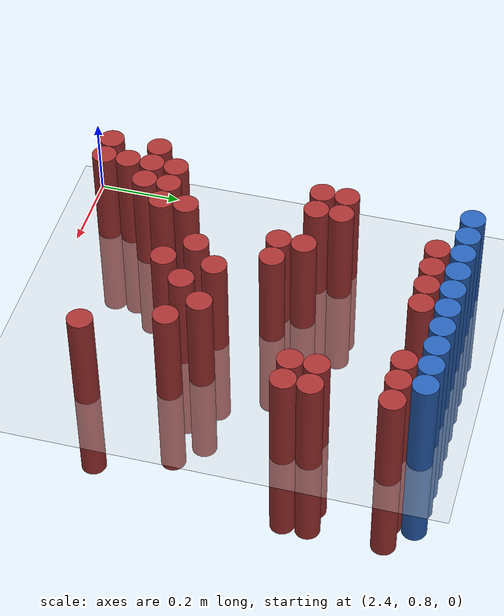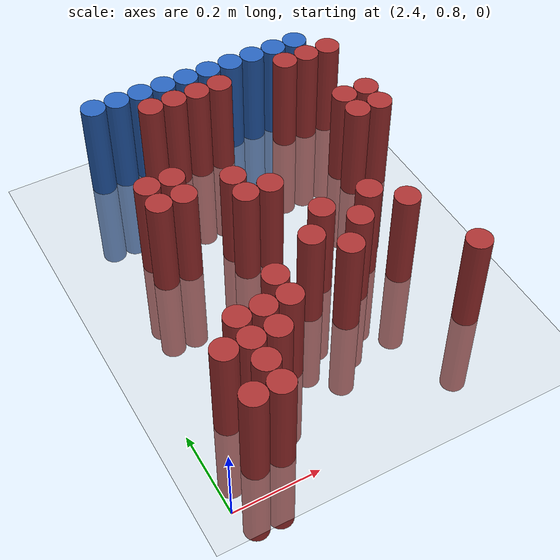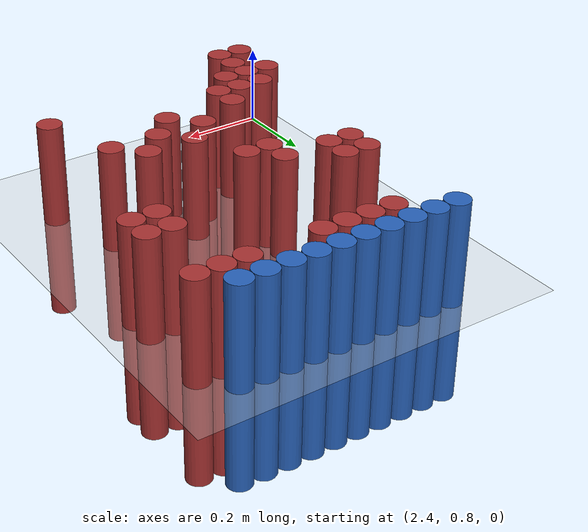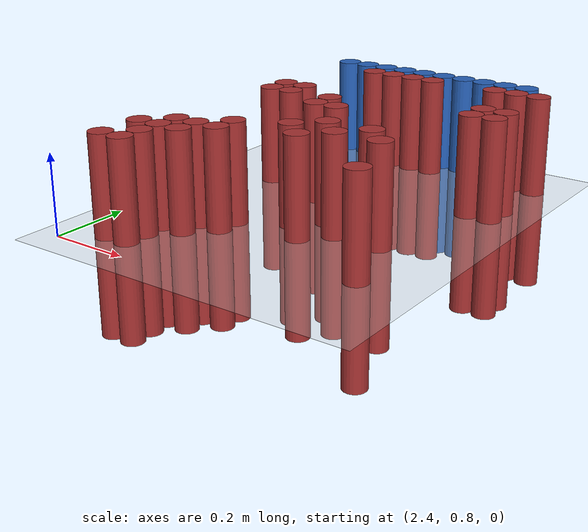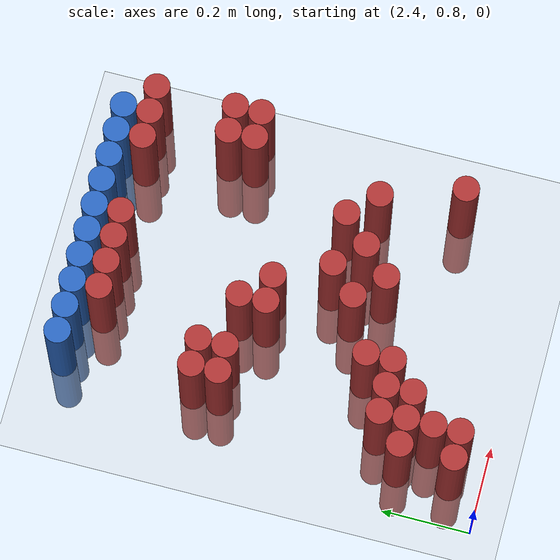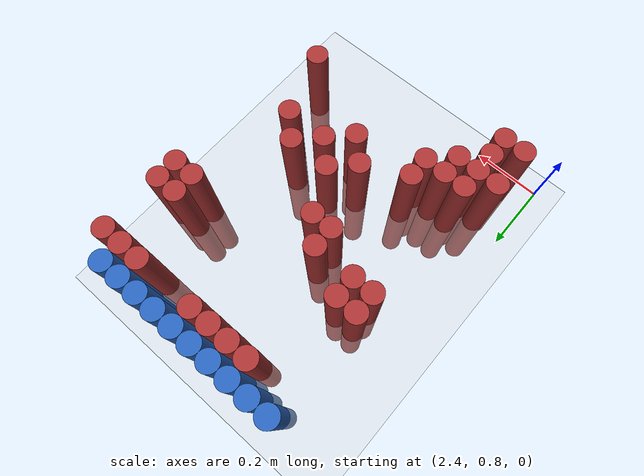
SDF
<sdf version="1.6">
 <world name="default">
  <model name="ground_plane">
   <static>1</static>
   <link name="link">
    <collision name="collision">
     <geometry><plane><normal>0 0 1</normal><size>100 100</size></plane></geometry>
     <surface><friction><ode><mu>100</mu><mu2>50</mu2></ode></friction></surface>
    </collision>
    <visual name="visual">
     <cast_shadows>0</cast_shadows>
     <geometry><plane><normal>0 0 1</normal><size>100 100</size></plane></geometry>
     <material>
      <script><uri>file://media/materials/scripts/gazebo.material</uri><name>Gazebo/Grey</name></script>
     </material>
    </visual>
   </link>
  </model>
  <model name="unit_cylinder_103">
   <static>1</static>
   <pose>2.550000 1.770000 0.000000 0.000000 0.000000 0.000000</pose>
   <link name="link">
    <inertial>
     <mass>1</mass>
     <inertia><ixx>0.145833</ixx><ixy>0</ixy><ixz>0</ixz><iyy>0.145833</iyy><iyz>0</iyz><izz>0.125</izz></inertia>
    </inertial>
    <collision name="collision">
     <geometry><cylinder><radius>0.030000</radius><length>0.5</length></cylinder></geometry>
    </collision>
    <visual name="visual">
     <geometry><cylinder><radius>0.030000</radius><length>0.5</length></cylinder></geometry>
     <material>
      <ambient>0.152000 0.379000 0.720000 1</ambient>
      <diffuse>0.152000 0.379000 0.720000 1</diffuse>
     </material>
     <material>
      <script><name>Gazebo/Grey</name><uri>file://media/materials/scripts/gazebo.material</uri></script>
     </material>
    </visual>
   </link>
  </model>
  <model name="unit_cylinder_104">
   <static>1</static>
   <pose>2.610000 1.770000 0.000000 0.000000 0.000000 0.000000</pose>
   <link name="link">
    <inertial>
     <mass>1</mass>
     <inertia><ixx>0.145833</ixx><ixy>0</ixy><ixz>0</ixz><iyy>0.145833</iyy><iyz>0</iyz><izz>0.125</izz></inertia>
    </inertial>
    <collision name="collision">
     <geometry><cylinder><radius>0.030000</radius><length>0.5</length></cylinder></geometry>
    </collision>
    <visual name="visual">
     <geometry><cylinder><radius>0.030000</radius><length>0.5</length></cylinder></geometry>
     <material>
      <ambient>0.152000 0.379000 0.720000 1</ambient>
      <diffuse>0.152000 0.379000 0.720000 1</diffuse>
     </material>
     <material>
      <script><name>Gazebo/Grey</name><uri>file://media/materials/scripts/gazebo.material</uri></script>
     </material>
    </visual>
   </link>
  </model>
  <model name="unit_cylinder_105">
   <static>1</static>
   <pose>2.670000 1.770000 0.000000 0.000000 0.000000 0.000000</pose>
   <link name="link">
    <inertial>
     <mass>1</mass>
     <inertia><ixx>0.145833</ixx><ixy>0</ixy><ixz>0</ixz><iyy>0.145833</iyy><iyz>0</iyz><izz>0.125</izz></inertia>
    </inertial>
    <collision name="collision">
     <geometry><cylinder><radius>0.030000</radius><length>0.5</length></cylinder></geometry>
    </collision>
    <visual name="visual">
     <geometry><cylinder><radius>0.030000</radius><length>0.5</length></cylinder></geometry>
     <material>
      <ambient>0.152000 0.379000 0.720000 1</ambient>
      <diffuse>0.152000 0.379000 0.720000 1</diffuse>
     </material>
     <material>
      <script><name>Gazebo/Grey</name><uri>file://media/materials/scripts/gazebo.material</uri></script>
     </material>
    </visual>
   </link>
  </model>
  <model name="unit_cylinder_106">
   <static>1</static>
   <pose>2.730000 1.770000 0.000000 0.000000 0.000000 0.000000</pose>
   <link name="link">
    <inertial>
     <mass>1</mass>
     <inertia><ixx>0.145833</ixx><ixy>0</ixy><ixz>0</ixz><iyy>0.145833</iyy><iyz>0</iyz><izz>0.125</izz></inertia>
    </inertial>
    <collision name="collision">
     <geometry><cylinder><radius>0.030000</radius><length>0.5</length></cylinder></geometry>
    </collision>
    <visual name="visual">
     <geometry><cylinder><radius>0.030000</radius><length>0.5</length></cylinder></geometry>
     <material>
      <ambient>0.152000 0.379000 0.720000 1</ambient>
      <diffuse>0.152000 0.379000 0.720000 1</diffuse>
     </material>
     <material>
      <script><name>Gazebo/Grey</name><uri>file://media/materials/scripts/gazebo.material</uri></script>
     </material>
    </visual>
   </link>
  </model>
  <model name="unit_cylinder_107">
   <static>1</static>
   <pose>2.790000 1.770000 0.000000 0.000000 0.000000 0.000000</pose>
   <link name="link">
    <inertial>
     <mass>1</mass>
     <inertia><ixx>0.145833</ixx><ixy>0</ixy><ixz>0</ixz><iyy>0.145833</iyy><iyz>0</iyz><izz>0.125</izz></inertia>
    </inertial>
    <collision name="collision">
     <geometry><cylinder><radius>0.030000</radius><length>0.5</length></cylinder></geometry>
    </collision>
    <visual name="visual">
     <geometry><cylinder><radius>0.030000</radius><length>0.5</length></cylinder></geometry>
     <material>
      <ambient>0.152000 0.379000 0.720000 1</ambient>
      <diffuse>0.152000 0.379000 0.720000 1</diffuse>
     </material>
     <material>
      <script><name>Gazebo/Grey</name><uri>file://media/materials/scripts/gazebo.material</uri></script>
     </material>
    </visual>
   </link>
  </model>
  <model name="unit_cylinder_108">
   <static>1</static>
   <pose>2.850000 1.770000 0.000000 0.000000 0.000000 0.000000</pose>
   <link name="link">
    <inertial>
     <mass>1</mass>
     <inertia><ixx>0.145833</ixx><ixy>0</ixy><ixz>0</ixz><iyy>0.145833</iyy><iyz>0</iyz><izz>0.125</izz></inertia>
    </inertial>
    <collision name="collision">
     <geometry><cylinder><radius>0.030000</radius><length>0.5</length></cylinder></geometry>
    </collision>
    <visual name="visual">
     <geometry><cylinder><radius>0.030000</radius><length>0.5</length></cylinder></geometry>
     <material>
      <ambient>0.152000 0.379000 0.720000 1</ambient>
      <diffuse>0.152000 0.379000 0.720000 1</diffuse>
     </material>
     <material>
      <script><name>Gazebo/Grey</name><uri>file://media/materials/scripts/gazebo.material</uri></script>
     </material>
    </visual>
   </link>
  </model>
  <model name="unit_cylinder_109">
   <static>1</static>
   <pose>2.910000 1.770000 0.000000 0.000000 0.000000 0.000000</pose>
   <link name="link">
    <inertial>
     <mass>1</mass>
     <inertia><ixx>0.145833</ixx><ixy>0</ixy><ixz>0</ixz><iyy>0.145833</iyy><iyz>0</iyz><izz>0.125</izz></inertia>
    </inertial>
    <collision name="collision">
     <geometry><cylinder><radius>0.030000</radius><length>0.5</length></cylinder></geometry>
    </collision>
    <visual name="visual">
     <geometry><cylinder><radius>0.030000</radius><length>0.5</length></cylinder></geometry>
     <material>
      <ambient>0.152000 0.379000 0.720000 1</ambient>
      <diffuse>0.152000 0.379000 0.720000 1</diffuse>
     </material>
     <material>
      <script><name>Gazebo/Grey</name><uri>file://media/materials/scripts/gazebo.material</uri></script>
     </material>
    </visual>
   </link>
  </model>
  <model name="unit_cylinder_110">
   <static>1</static>
   <pose>2.970000 1.770000 0.000000 0.000000 0.000000 0.000000</pose>
   <link name="link">
    <inertial>
     <mass>1</mass>
     <inertia><ixx>0.145833</ixx><ixy>0</ixy><ixz>0</ixz><iyy>0.145833</iyy><iyz>0</iyz><izz>0.125</izz></inertia>
    </inertial>
    <collision name="collision">
     <geometry><cylinder><radius>0.030000</radius><length>0.5</length></cylinder></geometry>
    </collision>
    <visual name="visual">
     <geometry><cylinder><radius>0.030000</radius><length>0.5</length></cylinder></geometry>
     <material>
      <ambient>0.152000 0.379000 0.720000 1</ambient>
      <diffuse>0.152000 0.379000 0.720000 1</diffuse>
     </material>
     <material>
      <script><name>Gazebo/Grey</name><uri>file://media/materials/scripts/gazebo.material</uri></script>
     </material>
    </visual>
   </link>
  </model>
  <model name="unit_cylinder_111">
   <static>1</static>
   <pose>3.030000 1.770000 0.000000 0.000000 0.000000 0.000000</pose>
   <link name="link">
    <inertial>
     <mass>1</mass>
     <inertia><ixx>0.145833</ixx><ixy>0</ixy><ixz>0</ixz><iyy>0.145833</iyy><iyz>0</iyz><izz>0.125</izz></inertia>
    </inertial>
    <collision name="collision">
     <geometry><cylinder><radius>0.030000</radius><length>0.5</length></cylinder></geometry>
    </collision>
    <visual name="visual">
     <geometry><cylinder><radius>0.030000</radius><length>0.5</length></cylinder></geometry>
     <material>
      <ambient>0.152000 0.379000 0.720000 1</ambient>
      <diffuse>0.152000 0.379000 0.720000 1</diffuse>
     </material>
     <material>
      <script><name>Gazebo/Grey</name><uri>file://media/materials/scripts/gazebo.material</uri></script>
     </material>
    </visual>
   </link>
  </model>
  <model name="unit_cylinder_112">
   <static>1</static>
   <pose>3.090000 1.770000 0.000000 0.000000 0.000000 0.000000</pose>
   <link name="link">
    <inertial>
     <mass>1</mass>
     <inertia><ixx>0.145833</ixx><ixy>0</ixy><ixz>0</ixz><iyy>0.145833</iyy><iyz>0</iyz><izz>0.125</izz></inertia>
    </inertial>
    <collision name="collision">
     <geometry><cylinder><radius>0.030000</radius><length>0.5</length></cylinder></geometry>
    </collision>
    <visual name="visual">
     <geometry><cylinder><radius>0.030000</radius><length>0.5</length></cylinder></geometry>
     <material>
      <ambient>0.152000 0.379000 0.720000 1</ambient>
      <diffuse>0.152000 0.379000 0.720000 1</diffuse>
     </material>
     <material>
      <script><name>Gazebo/Grey</name><uri>file://media/materials/scripts/gazebo.material</uri></script>
     </material>
    </visual>
   </link>
  </model>
  <model name="unit_cylinder_129">
   <static>1</static>
   <pose>2.670000 1.710000 0.000000 0.000000 0.000000 0.000000</pose>
   <link name="link">
    <inertial>
     <mass>1</mass>
     <inertia><ixx>0.145833</ixx><ixy>0</ixy><ixz>0</ixz><iyy>0.145833</iyy><iyz>0</iyz><izz>0.125</izz></inertia>
    </inertial>
    <collision name="collision">
     <geometry><cylinder><radius>0.030000</radius><length>0.5</length></cylinder></geometry>
    </collision>
    <visual name="visual">
     <geometry><cylinder><radius>0.030000</radius><length>0.5</length></cylinder></geometry>
     <material>
      <ambient>0.648000 0.192000 0.192000 1</ambient>
      <diffuse>0.648000 0.192000 0.192000 1</diffuse>
     </material>
     <material>
      <script><name>Gazebo/Grey</name><uri>file://media/materials/scripts/gazebo.material</uri></script>
     </material>
    </visual>
   </link>
  </model>
  <model name="unit_cylinder_130">
   <static>1</static>
   <pose>2.730000 1.710000 0.000000 0.000000 0.000000 0.000000</pose>
   <link name="link">
    <inertial>
     <mass>1</mass>
     <inertia><ixx>0.145833</ixx><ixy>0</ixy><ixz>0</ixz><iyy>0.145833</iyy><iyz>0</iyz><izz>0.125</izz></inertia>
    </inertial>
    <collision name="collision">
     <geometry><cylinder><radius>0.030000</radius><length>0.5</length></cylinder></geometry>
    </collision>
    <visual name="visual">
     <geometry><cylinder><radius>0.030000</radius><length>0.5</length></cylinder></geometry>
     <material>
      <ambient>0.648000 0.192000 0.192000 1</ambient>
      <diffuse>0.648000 0.192000 0.192000 1</diffuse>
     </material>
     <material>
      <script><name>Gazebo/Grey</name><uri>file://media/materials/scripts/gazebo.material</uri></script>
     </material>
    </visual>
   </link>
  </model>
  <model name="unit_cylinder_131">
   <static>1</static>
   <pose>2.790000 1.710000 0.000000 0.000000 0.000000 0.000000</pose>
   <link name="link">
    <inertial>
     <mass>1</mass>
     <inertia><ixx>0.145833</ixx><ixy>0</ixy><ixz>0</ixz><iyy>0.145833</iyy><iyz>0</iyz><izz>0.125</izz></inertia>
    </inertial>
    <collision name="collision">
     <geometry><cylinder><radius>0.030000</radius><length>0.5</length></cylinder></geometry>
    </collision>
    <visual name="visual">
     <geometry><cylinder><radius>0.030000</radius><length>0.5</length></cylinder></geometry>
     <material>
      <ambient>0.648000 0.192000 0.192000 1</ambient>
      <diffuse>0.648000 0.192000 0.192000 1</diffuse>
     </material>
     <material>
      <script><name>Gazebo/Grey</name><uri>file://media/materials/scripts/gazebo.material</uri></script>
     </material>
    </visual>
   </link>
  </model>
  <model name="unit_cylinder_132">
   <static>1</static>
   <pose>2.850000 1.710000 0.000000 0.000000 0.000000 0.000000</pose>
   <link name="link">
    <inertial>
     <mass>1</mass>
     <inertia><ixx>0.145833</ixx><ixy>0</ixy><ixz>0</ixz><iyy>0.145833</iyy><iyz>0</iyz><izz>0.125</izz></inertia>
    </inertial>
    <collision name="collision">
     <geometry><cylinder><radius>0.030000</radius><length>0.5</length></cylinder></geometry>
    </collision>
    <visual name="visual">
     <geometry><cylinder><radius>0.030000</radius><length>0.5</length></cylinder></geometry>
     <material>
      <ambient>0.648000 0.192000 0.192000 1</ambient>
      <diffuse>0.648000 0.192000 0.192000 1</diffuse>
     </material>
     <material>
      <script><name>Gazebo/Grey</name><uri>file://media/materials/scripts/gazebo.material</uri></script>
     </material>
    </visual>
   </link>
  </model>
  <model name="unit_cylinder_133">
   <static>1</static>
   <pose>3.030000 1.710000 0.000000 0.000000 0.000000 0.000000</pose>
   <link name="link">
    <inertial>
     <mass>1</mass>
     <inertia><ixx>0.145833</ixx><ixy>0</ixy><ixz>0</ixz><iyy>0.145833</iyy><iyz>0</iyz><izz>0.125</izz></inertia>
    </inertial>
    <collision name="collision">
     <geometry><cylinder><radius>0.030000</radius><length>0.5</length></cylinder></geometry>
    </collision>
    <visual name="visual">
     <geometry><cylinder><radius>0.030000</radius><length>0.5</length></cylinder></geometry>
     <material>
      <ambient>0.648000 0.192000 0.192000 1</ambient>
      <diffuse>0.648000 0.192000 0.192000 1</diffuse>
     </material>
     <material>
      <script><name>Gazebo/Grey</name><uri>file://media/materials/scripts/gazebo.material</uri></script>
     </material>
    </visual>
   </link>
  </model>
  <model name="unit_cylinder_134">
   <static>1</static>
   <pose>3.090000 1.710000 0.000000 0.000000 0.000000 0.000000</pose>
   <link name="link">
    <inertial>
     <mass>1</mass>
     <inertia><ixx>0.145833</ixx><ixy>0</ixy><ixz>0</ixz><iyy>0.145833</iyy><iyz>0</iyz><izz>0.125</izz></inertia>
    </inertial>
    <collision name="collision">
     <geometry><cylinder><radius>0.030000</radius><length>0.5</length></cylinder></geometry>
    </collision>
    <visual name="visual">
     <geometry><cylinder><radius>0.030000</radius><length>0.5</length></cylinder></geometry>
     <material>
      <ambient>0.648000 0.192000 0.192000 1</ambient>
      <diffuse>0.648000 0.192000 0.192000 1</diffuse>
     </material>
     <material>
      <script><name>Gazebo/Grey</name><uri>file://media/materials/scripts/gazebo.material</uri></script>
     </material>
    </visual>
   </link>
  </model>
  <model name="unit_cylinder_135">
   <static>1</static>
   <pose>3.150000 1.710000 0.000000 0.000000 0.000000 0.000000</pose>
   <link name="link">
    <inertial>
     <mass>1</mass>
     <inertia><ixx>0.145833</ixx><ixy>0</ixy><ixz>0</ixz><iyy>0.145833</iyy><iyz>0</iyz><izz>0.125</izz></inertia>
    </inertial>
    <collision name="collision">
     <geometry><cylinder><radius>0.030000</radius><length>0.5</length></cylinder></geometry>
    </collision>
    <visual name="visual">
     <geometry><cylinder><radius>0.030000</radius><length>0.5</length></cylinder></geometry>
     <material>
      <ambient>0.648000 0.192000 0.192000 1</ambient>
      <diffuse>0.648000 0.192000 0.192000 1</diffuse>
     </material>
     <material>
      <script><name>Gazebo/Grey</name><uri>file://media/materials/scripts/gazebo.material</uri></script>
     </material>
    </visual>
   </link>
  </model>
  <model name="unit_cylinder_156">
   <static>1</static>
   <pose>3.090000 1.530000 0.000000 0.000000 0.000000 0.000000</pose>
   <link name="link">
    <inertial>
     <mass>1</mass>
     <inertia><ixx>0.145833</ixx><ixy>0</ixy><ixz>0</ixz><iyy>0.145833</iyy><iyz>0</iyz><izz>0.125</izz></inertia>
    </inertial>
    <collision name="collision">
     <geometry><cylinder><radius>0.030000</radius><length>0.5</length></cylinder></geometry>
    </collision>
    <visual name="visual">
     <geometry><cylinder><radius>0.030000</radius><length>0.5</length></cylinder></geometry>
     <material>
      <ambient>0.648000 0.192000 0.192000 1</ambient>
      <diffuse>0.648000 0.192000 0.192000 1</diffuse>
     </material>
     <material>
      <script><name>Gazebo/Grey</name><uri>file://media/materials/scripts/gazebo.material</uri></script>
     </material>
    </visual>
   </link>
  </model>
  <model name="unit_cylinder_157">
   <static>1</static>
   <pose>3.150000 1.530000 0.000000 0.000000 0.000000 0.000000</pose>
   <link name="link">
    <inertial>
     <mass>1</mass>
     <inertia><ixx>0.145833</ixx><ixy>0</ixy><ixz>0</ixz><iyy>0.145833</iyy><iyz>0</iyz><izz>0.125</izz></inertia>
    </inertial>
    <collision name="collision">
     <geometry><cylinder><radius>0.030000</radius><length>0.5</length></cylinder></geometry>
    </collision>
    <visual name="visual">
     <geometry><cylinder><radius>0.030000</radius><length>0.5</length></cylinder></geometry>
     <material>
      <ambient>0.648000 0.192000 0.192000 1</ambient>
      <diffuse>0.648000 0.192000 0.192000 1</diffuse>
     </material>
     <material>
      <script><name>Gazebo/Grey</name><uri>file://media/materials/scripts/gazebo.material</uri></script>
     </material>
    </visual>
   </link>
  </model>
  <model name="unit_cylinder_159">
   <static>1</static>
   <pose>2.550000 1.470000 0.000000 0.000000 0.000000 0.000000</pose>
   <link name="link">
    <inertial>
     <mass>1</mass>
     <inertia><ixx>0.145833</ixx><ixy>0</ixy><ixz>0</ixz><iyy>0.145833</iyy><iyz>0</iyz><izz>0.125</izz></inertia>
    </inertial>
    <collision name="collision">
     <geometry><cylinder><radius>0.030000</radius><length>0.5</length></cylinder></geometry>
    </collision>
    <visual name="visual">
     <geometry><cylinder><radius>0.030000</radius><length>0.5</length></cylinder></geometry>
     <material>
      <ambient>0.648000 0.192000 0.192000 1</ambient>
      <diffuse>0.648000 0.192000 0.192000 1</diffuse>
     </material>
     <material>
      <script><name>Gazebo/Grey</name><uri>file://media/materials/scripts/gazebo.material</uri></script>
     </material>
    </visual>
   </link>
  </model>
  <model name="unit_cylinder_160">
   <static>1</static>
   <pose>2.610000 1.470000 0.000000 0.000000 0.000000 0.000000</pose>
   <link name="link">
    <inertial>
     <mass>1</mass>
     <inertia><ixx>0.145833</ixx><ixy>0</ixy><ixz>0</ixz><iyy>0.145833</iyy><iyz>0</iyz><izz>0.125</izz></inertia>
    </inertial>
    <collision name="collision">
     <geometry><cylinder><radius>0.030000</radius><length>0.5</length></cylinder></geometry>
    </collision>
    <visual name="visual">
     <geometry><cylinder><radius>0.030000</radius><length>0.5</length></cylinder></geometry>
     <material>
      <ambient>0.648000 0.192000 0.192000 1</ambient>
      <diffuse>0.648000 0.192000 0.192000 1</diffuse>
     </material>
     <material>
      <script><name>Gazebo/Grey</name><uri>file://media/materials/scripts/gazebo.material</uri></script>
     </material>
    </visual>
   </link>
  </model>
  <model name="unit_cylinder_161">
   <static>1</static>
   <pose>3.090000 1.470000 0.000000 0.000000 0.000000 0.000000</pose>
   <link name="link">
    <inertial>
     <mass>1</mass>
     <inertia><ixx>0.145833</ixx><ixy>0</ixy><ixz>0</ixz><iyy>0.145833</iyy><iyz>0</iyz><izz>0.125</izz></inertia>
    </inertial>
    <collision name="collision">
     <geometry><cylinder><radius>0.030000</radius><length>0.5</length></cylinder></geometry>
    </collision>
    <visual name="visual">
     <geometry><cylinder><radius>0.030000</radius><length>0.5</length></cylinder></geometry>
     <material>
      <ambient>0.648000 0.192000 0.192000 1</ambient>
      <diffuse>0.648000 0.192000 0.192000 1</diffuse>
     </material>
     <material>
      <script><name>Gazebo/Grey</name><uri>file://media/materials/scripts/gazebo.material</uri></script>
     </material>
    </visual>
   </link>
  </model>
  <model name="unit_cylinder_162">
   <static>1</static>
   <pose>3.150000 1.470000 0.000000 0.000000 0.000000 0.000000</pose>
   <link name="link">
    <inertial>
     <mass>1</mass>
     <inertia><ixx>0.145833</ixx><ixy>0</ixy><ixz>0</ixz><iyy>0.145833</iyy><iyz>0</iyz><izz>0.125</izz></inertia>
    </inertial>
    <collision name="collision">
     <geometry><cylinder><radius>0.030000</radius><length>0.5</length></cylinder></geometry>
    </collision>
    <visual name="visual">
     <geometry><cylinder><radius>0.030000</radius><length>0.5</length></cylinder></geometry>
     <material>
      <ambient>0.648000 0.192000 0.192000 1</ambient>
      <diffuse>0.648000 0.192000 0.192000 1</diffuse>
     </material>
     <material>
      <script><name>Gazebo/Grey</name><uri>file://media/materials/scripts/gazebo.material</uri></script>
     </material>
    </visual>
   </link>
  </model>
  <model name="unit_cylinder_163">
   <static>1</static>
   <pose>2.550000 1.410000 0.000000 0.000000 0.000000 0.000000</pose>
   <link name="link">
    <inertial>
     <mass>1</mass>
     <inertia><ixx>0.145833</ixx><ixy>0</ixy><ixz>0</ixz><iyy>0.145833</iyy><iyz>0</iyz><izz>0.125</izz></inertia>
    </inertial>
    <collision name="collision">
     <geometry><cylinder><radius>0.030000</radius><length>0.5</length></cylinder></geometry>
    </collision>
    <visual name="visual">
     <geometry><cylinder><radius>0.030000</radius><length>0.5</length></cylinder></geometry>
     <material>
      <ambient>0.648000 0.192000 0.192000 1</ambient>
      <diffuse>0.648000 0.192000 0.192000 1</diffuse>
     </material>
     <material>
      <script><name>Gazebo/Grey</name><uri>file://media/materials/scripts/gazebo.material</uri></script>
     </material>
    </visual>
   </link>
  </model>
  <model name="unit_cylinder_164">
   <static>1</static>
   <pose>2.610000 1.410000 0.000000 0.000000 0.000000 0.000000</pose>
   <link name="link">
    <inertial>
     <mass>1</mass>
     <inertia><ixx>0.145833</ixx><ixy>0</ixy><ixz>0</ixz><iyy>0.145833</iyy><iyz>0</iyz><izz>0.125</izz></inertia>
    </inertial>
    <collision name="collision">
     <geometry><cylinder><radius>0.030000</radius><length>0.5</length></cylinder></geometry>
    </collision>
    <visual name="visual">
     <geometry><cylinder><radius>0.030000</radius><length>0.5</length></cylinder></geometry>
     <material>
      <ambient>0.648000 0.192000 0.192000 1</ambient>
      <diffuse>0.648000 0.192000 0.192000 1</diffuse>
     </material>
     <material>
      <script><name>Gazebo/Grey</name><uri>file://media/materials/scripts/gazebo.material</uri></script>
     </material>
    </visual>
   </link>
  </model>
  <model name="unit_cylinder_165">
   <static>1</static>
   <pose>2.730000 1.410000 0.000000 0.000000 0.000000 0.000000</pose>
   <link name="link">
    <inertial>
     <mass>1</mass>
     <inertia><ixx>0.145833</ixx><ixy>0</ixy><ixz>0</ixz><iyy>0.145833</iyy><iyz>0</iyz><izz>0.125</izz></inertia>
    </inertial>
    <collision name="collision">
     <geometry><cylinder><radius>0.030000</radius><length>0.5</length></cylinder></geometry>
    </collision>
    <visual name="visual">
     <geometry><cylinder><radius>0.030000</radius><length>0.5</length></cylinder></geometry>
     <material>
      <ambient>0.648000 0.192000 0.192000 1</ambient>
      <diffuse>0.648000 0.192000 0.192000 1</diffuse>
     </material>
     <material>
      <script><name>Gazebo/Grey</name><uri>file://media/materials/scripts/gazebo.material</uri></script>
     </material>
    </visual>
   </link>
  </model>
  <model name="unit_cylinder_166">
   <static>1</static>
   <pose>2.730000 1.350000 0.000000 0.000000 0.000000 0.000000</pose>
   <link name="link">
    <inertial>
     <mass>1</mass>
     <inertia><ixx>0.145833</ixx><ixy>0</ixy><ixz>0</ixz><iyy>0.145833</iyy><iyz>0</iyz><izz>0.125</izz></inertia>
    </inertial>
    <collision name="collision">
     <geometry><cylinder><radius>0.030000</radius><length>0.5</length></cylinder></geometry>
    </collision>
    <visual name="visual">
     <geometry><cylinder><radius>0.030000</radius><length>0.5</length></cylinder></geometry>
     <material>
      <ambient>0.648000 0.192000 0.192000 1</ambient>
      <diffuse>0.648000 0.192000 0.192000 1</diffuse>
     </material>
     <material>
      <script><name>Gazebo/Grey</name><uri>file://media/materials/scripts/gazebo.material</uri></script>
     </material>
    </visual>
   </link>
  </model>
  <model name="unit_cylinder_167">
   <static>1</static>
   <pose>2.790000 1.350000 0.000000 0.000000 0.000000 0.000000</pose>
   <link name="link">
    <inertial>
     <mass>1</mass>
     <inertia><ixx>0.145833</ixx><ixy>0</ixy><ixz>0</ixz><iyy>0.145833</iyy><iyz>0</iyz><izz>0.125</izz></inertia>
    </inertial>
    <collision name="collision">
     <geometry><cylinder><radius>0.030000</radius><length>0.5</length></cylinder></geometry>
    </collision>
    <visual name="visual">
     <geometry><cylinder><radius>0.030000</radius><length>0.5</length></cylinder></geometry>
     <material>
      <ambient>0.648000 0.192000 0.192000 1</ambient>
      <diffuse>0.648000 0.192000 0.192000 1</diffuse>
     </material>
     <material>
      <script><name>Gazebo/Grey</name><uri>file://media/materials/scripts/gazebo.material</uri></script>
     </material>
    </visual>
   </link>
  </model>
  <model name="unit_cylinder_177">
   <static>1</static>
   <pose>2.850000 1.230000 0.000000 0.000000 0.000000 0.000000</pose>
   <link name="link">
    <inertial>
     <mass>1</mass>
     <inertia><ixx>0.145833</ixx><ixy>0</ixy><ixz>0</ixz><iyy>0.145833</iyy><iyz>0</iyz><izz>0.125</izz></inertia>
    </inertial>
    <collision name="collision">
     <geometry><cylinder><radius>0.030000</radius><length>0.5</length></cylinder></geometry>
    </collision>
    <visual name="visual">
     <geometry><cylinder><radius>0.030000</radius><length>0.5</length></cylinder></geometry>
     <material>
      <ambient>0.648000 0.192000 0.192000 1</ambient>
      <diffuse>0.648000 0.192000 0.192000 1</diffuse>
     </material>
     <material>
      <script><name>Gazebo/Grey</name><uri>file://media/materials/scripts/gazebo.material</uri></script>
     </material>
    </visual>
   </link>
  </model>
  <model name="unit_cylinder_178">
   <static>1</static>
   <pose>2.970000 1.230000 0.000000 0.000000 0.000000 0.000000</pose>
   <link name="link">
    <inertial>
     <mass>1</mass>
     <inertia><ixx>0.145833</ixx><ixy>0</ixy><ixz>0</ixz><iyy>0.145833</iyy><iyz>0</iyz><izz>0.125</izz></inertia>
    </inertial>
    <collision name="collision">
     <geometry><cylinder><radius>0.030000</radius><length>0.5</length></cylinder></geometry>
    </collision>
    <visual name="visual">
     <geometry><cylinder><radius>0.030000</radius><length>0.5</length></cylinder></geometry>
     <material>
      <ambient>0.648000 0.192000 0.192000 1</ambient>
      <diffuse>0.648000 0.192000 0.192000 1</diffuse>
     </material>
     <material>
      <script><name>Gazebo/Grey</name><uri>file://media/materials/scripts/gazebo.material</uri></script>
     </material>
    </visual>
   </link>
  </model>
  <model name="unit_cylinder_181">
   <static>1</static>
   <pose>2.790000 1.170000 0.000000 0.000000 0.000000 0.000000</pose>
   <link name="link">
    <inertial>
     <mass>1</mass>
     <inertia><ixx>0.145833</ixx><ixy>0</ixy><ixz>0</ixz><iyy>0.145833</iyy><iyz>0</iyz><izz>0.125</izz></inertia>
    </inertial>
    <collision name="collision">
     <geometry><cylinder><radius>0.030000</radius><length>0.5</length></cylinder></geometry>
    </collision>
    <visual name="visual">
     <geometry><cylinder><radius>0.030000</radius><length>0.5</length></cylinder></geometry>
     <material>
      <ambient>0.648000 0.192000 0.192000 1</ambient>
      <diffuse>0.648000 0.192000 0.192000 1</diffuse>
     </material>
     <material>
      <script><name>Gazebo/Grey</name><uri>file://media/materials/scripts/gazebo.material</uri></script>
     </material>
    </visual>
   </link>
  </model>
  <model name="unit_cylinder_182">
   <static>1</static>
   <pose>2.910000 1.170000 0.000000 0.000000 0.000000 0.000000</pose>
   <link name="link">
    <inertial>
     <mass>1</mass>
     <inertia><ixx>0.145833</ixx><ixy>0</ixy><ixz>0</ixz><iyy>0.145833</iyy><iyz>0</iyz><izz>0.125</izz></inertia>
    </inertial>
    <collision name="collision">
     <geometry><cylinder><radius>0.030000</radius><length>0.5</length></cylinder></geometry>
    </collision>
    <visual name="visual">
     <geometry><cylinder><radius>0.030000</radius><length>0.5</length></cylinder></geometry>
     <material>
      <ambient>0.648000 0.192000 0.192000 1</ambient>
      <diffuse>0.648000 0.192000 0.192000 1</diffuse>
     </material>
     <material>
      <script><name>Gazebo/Grey</name><uri>file://media/materials/scripts/gazebo.material</uri></script>
     </material>
    </visual>
   </link>
  </model>
  <model name="unit_cylinder_183">
   <static>1</static>
   <pose>3.030000 1.170000 0.000000 0.000000 0.000000 0.000000</pose>
   <link name="link">
    <inertial>
     <mass>1</mass>
     <inertia><ixx>0.145833</ixx><ixy>0</ixy><ixz>0</ixz><iyy>0.145833</iyy><iyz>0</iyz><izz>0.125</izz></inertia>
    </inertial>
    <collision name="collision">
     <geometry><cylinder><radius>0.030000</radius><length>0.5</length></cylinder></geometry>
    </collision>
    <visual name="visual">
     <geometry><cylinder><radius>0.030000</radius><length>0.5</length></cylinder></geometry>
     <material>
      <ambient>0.648000 0.192000 0.192000 1</ambient>
      <diffuse>0.648000 0.192000 0.192000 1</diffuse>
     </material>
     <material>
      <script><name>Gazebo/Grey</name><uri>file://media/materials/scripts/gazebo.material</uri></script>
     </material>
    </visual>
   </link>
  </model>
  <model name="unit_cylinder_185">
   <static>1</static>
   <pose>2.670000 1.110000 0.000000 0.000000 0.000000 0.000000</pose>
   <link name="link">
    <inertial>
     <mass>1</mass>
     <inertia><ixx>0.145833</ixx><ixy>0</ixy><ixz>0</ixz><iyy>0.145833</iyy><iyz>0</iyz><izz>0.125</izz></inertia>
    </inertial>
    <collision name="collision">
     <geometry><cylinder><radius>0.030000</radius><length>0.5</length></cylinder></geometry>
    </collision>
    <visual name="visual">
     <geometry><cylinder><radius>0.030000</radius><length>0.5</length></cylinder></geometry>
     <material>
      <ambient>0.648000 0.192000 0.192000 1</ambient>
      <diffuse>0.648000 0.192000 0.192000 1</diffuse>
     </material>
     <material>
      <script><name>Gazebo/Grey</name><uri>file://media/materials/scripts/gazebo.material</uri></script>
     </material>
    </visual>
   </link>
  </model>
  <model name="unit_cylinder_186">
   <static>1</static>
   <pose>2.850000 1.110000 0.000000 0.000000 0.000000 0.000000</pose>
   <link name="link">
    <inertial>
     <mass>1</mass>
     <inertia><ixx>0.145833</ixx><ixy>0</ixy><ixz>0</ixz><iyy>0.145833</iyy><iyz>0</iyz><izz>0.125</izz></inertia>
    </inertial>
    <collision name="collision">
     <geometry><cylinder><radius>0.030000</radius><length>0.5</length></cylinder></geometry>
    </collision>
    <visual name="visual">
     <geometry><cylinder><radius>0.030000</radius><length>0.5</length></cylinder></geometry>
     <material>
      <ambient>0.648000 0.192000 0.192000 1</ambient>
      <diffuse>0.648000 0.192000 0.192000 1</diffuse>
     </material>
     <material>
      <script><name>Gazebo/Grey</name><uri>file://media/materials/scripts/gazebo.material</uri></script>
     </material>
    </visual>
   </link>
  </model>
  <model name="unit_cylinder_189">
   <static>1</static>
   <pose>2.550000 1.050000 0.000000 0.000000 0.000000 0.000000</pose>
   <link name="link">
    <inertial>
     <mass>1</mass>
     <inertia><ixx>0.145833</ixx><ixy>0</ixy><ixz>0</ixz><iyy>0.145833</iyy><iyz>0</iyz><izz>0.125</izz></inertia>
    </inertial>
    <collision name="collision">
     <geometry><cylinder><radius>0.030000</radius><length>0.5</length></cylinder></geometry>
    </collision>
    <visual name="visual">
     <geometry><cylinder><radius>0.030000</radius><length>0.5</length></cylinder></geometry>
     <material>
      <ambient>0.648000 0.192000 0.192000 1</ambient>
      <diffuse>0.648000 0.192000 0.192000 1</diffuse>
     </material>
     <material>
      <script><name>Gazebo/Grey</name><uri>file://media/materials/scripts/gazebo.material</uri></script>
     </material>
    </visual>
   </link>
  </model>
  <model name="unit_cylinder_190">
   <static>1</static>
   <pose>2.610000 1.050000 0.000000 0.000000 0.000000 0.000000</pose>
   <link name="link">
    <inertial>
     <mass>1</mass>
     <inertia><ixx>0.145833</ixx><ixy>0</ixy><ixz>0</ixz><iyy>0.145833</iyy><iyz>0</iyz><izz>0.125</izz></inertia>
    </inertial>
    <collision name="collision">
     <geometry><cylinder><radius>0.030000</radius><length>0.5</length></cylinder></geometry>
    </collision>
    <visual name="visual">
     <geometry><cylinder><radius>0.030000</radius><length>0.5</length></cylinder></geometry>
     <material>
      <ambient>0.648000 0.192000 0.192000 1</ambient>
      <diffuse>0.648000 0.192000 0.192000 1</diffuse>
     </material>
     <material>
      <script><name>Gazebo/Grey</name><uri>file://media/materials/scripts/gazebo.material</uri></script>
     </material>
    </visual>
   </link>
  </model>
  <model name="unit_cylinder_191">
   <static>1</static>
   <pose>2.670000 1.050000 0.000000 0.000000 0.000000 0.000000</pose>
   <link name="link">
    <inertial>
     <mass>1</mass>
     <inertia><ixx>0.145833</ixx><ixy>0</ixy><ixz>0</ixz><iyy>0.145833</iyy><iyz>0</iyz><izz>0.125</izz></inertia>
    </inertial>
    <collision name="collision">
     <geometry><cylinder><radius>0.030000</radius><length>0.5</length></cylinder></geometry>
    </collision>
    <visual name="visual">
     <geometry><cylinder><radius>0.030000</radius><length>0.5</length></cylinder></geometry>
     <material>
      <ambient>0.648000 0.192000 0.192000 1</ambient>
      <diffuse>0.648000 0.192000 0.192000 1</diffuse>
     </material>
     <material>
      <script><name>Gazebo/Grey</name><uri>file://media/materials/scripts/gazebo.material</uri></script>
     </material>
    </visual>
   </link>
  </model>
  <model name="unit_cylinder_195">
   <static>1</static>
   <pose>2.490000 0.990000 0.000000 0.000000 0.000000 0.000000</pose>
   <link name="link">
    <inertial>
     <mass>1</mass>
     <inertia><ixx>0.145833</ixx><ixy>0</ixy><ixz>0</ixz><iyy>0.145833</iyy><iyz>0</iyz><izz>0.125</izz></inertia>
    </inertial>
    <collision name="collision">
     <geometry><cylinder><radius>0.030000</radius><length>0.5</length></cylinder></geometry>
    </collision>
    <visual name="visual">
     <geometry><cylinder><radius>0.030000</radius><length>0.5</length></cylinder></geometry>
     <material>
      <ambient>0.648000 0.192000 0.192000 1</ambient>
      <diffuse>0.648000 0.192000 0.192000 1</diffuse>
     </material>
     <material>
      <script><name>Gazebo/Grey</name><uri>file://media/materials/scripts/gazebo.material</uri></script>
     </material>
    </visual>
   </link>
  </model>
  <model name="unit_cylinder_196">
   <static>1</static>
   <pose>2.550000 0.990000 0.000000 0.000000 0.000000 0.000000</pose>
   <link name="link">
    <inertial>
     <mass>1</mass>
     <inertia><ixx>0.145833</ixx><ixy>0</ixy><ixz>0</ixz><iyy>0.145833</iyy><iyz>0</iyz><izz>0.125</izz></inertia>
    </inertial>
    <collision name="collision">
     <geometry><cylinder><radius>0.030000</radius><length>0.5</length></cylinder></geometry>
    </collision>
    <visual name="visual">
     <geometry><cylinder><radius>0.030000</radius><length>0.5</length></cylinder></geometry>
     <material>
      <ambient>0.648000 0.192000 0.192000 1</ambient>
      <diffuse>0.648000 0.192000 0.192000 1</diffuse>
     </material>
     <material>
      <script><name>Gazebo/Grey</name><uri>file://media/materials/scripts/gazebo.material</uri></script>
     </material>
    </visual>
   </link>
  </model>
  <model name="unit_cylinder_197">
   <static>1</static>
   <pose>2.610000 0.990000 0.000000 0.000000 0.000000 0.000000</pose>
   <link name="link">
    <inertial>
     <mass>1</mass>
     <inertia><ixx>0.145833</ixx><ixy>0</ixy><ixz>0</ixz><iyy>0.145833</iyy><iyz>0</iyz><izz>0.125</izz></inertia>
    </inertial>
    <collision name="collision">
     <geometry><cylinder><radius>0.030000</radius><length>0.5</length></cylinder></geometry>
    </collision>
    <visual name="visual">
     <geometry><cylinder><radius>0.030000</radius><length>0.5</length></cylinder></geometry>
     <material>
      <ambient>0.648000 0.192000 0.192000 1</ambient>
      <diffuse>0.648000 0.192000 0.192000 1</diffuse>
     </material>
     <material>
      <script><name>Gazebo/Grey</name><uri>file://media/materials/scripts/gazebo.material</uri></script>
     </material>
    </visual>
   </link>
  </model>
  <model name="unit_cylinder_198">
   <static>1</static>
   <pose>3.090000 0.990000 0.000000 0.000000 0.000000 0.000000</pose>
   <link name="link">
    <inertial>
     <mass>1</mass>
     <inertia><ixx>0.145833</ixx><ixy>0</ixy><ixz>0</ixz><iyy>0.145833</iyy><iyz>0</iyz><izz>0.125</izz></inertia>
    </inertial>
    <collision name="collision">
     <geometry><cylinder><radius>0.030000</radius><length>0.5</length></cylinder></geometry>
    </collision>
    <visual name="visual">
     <geometry><cylinder><radius>0.030000</radius><length>0.5</length></cylinder></geometry>
     <material>
      <ambient>0.648000 0.192000 0.192000 1</ambient>
      <diffuse>0.648000 0.192000 0.192000 1</diffuse>
     </material>
     <material>
      <script><name>Gazebo/Grey</name><uri>file://media/materials/scripts/gazebo.material</uri></script>
     </material>
    </visual>
   </link>
  </model>
  <model name="unit_cylinder_203">
   <static>1</static>
   <pose>2.550000 0.930000 0.000000 0.000000 0.000000 0.000000</pose>
   <link name="link">
    <inertial>
     <mass>1</mass>
     <inertia><ixx>0.145833</ixx><ixy>0</ixy><ixz>0</ixz><iyy>0.145833</iyy><iyz>0</iyz><izz>0.125</izz></inertia>
    </inertial>
    <collision name="collision">
     <geometry><cylinder><radius>0.030000</radius><length>0.5</length></cylinder></geometry>
    </collision>
    <visual name="visual">
     <geometry><cylinder><radius>0.030000</radius><length>0.5</length></cylinder></geometry>
     <material>
      <ambient>0.648000 0.192000 0.192000 1</ambient>
      <diffuse>0.648000 0.192000 0.192000 1</diffuse>
     </material>
     <material>
      <script><name>Gazebo/Grey</name><uri>file://media/materials/scripts/gazebo.material</uri></script>
     </material>
    </visual>
   </link>
  </model>
  <model name="unit_cylinder_207">
   <static>1</static>
   <pose>2.490000 0.870000 0.000000 0.000000 0.000000 0.000000</pose>
   <link name="link">
    <inertial>
     <mass>1</mass>
     <inertia><ixx>0.145833</ixx><ixy>0</ixy><ixz>0</ixz><iyy>0.145833</iyy><iyz>0</iyz><izz>0.125</izz></inertia>
    </inertial>
    <collision name="collision">
     <geometry><cylinder><radius>0.030000</radius><length>0.5</length></cylinder></geometry>
    </collision>
    <visual name="visual">
     <geometry><cylinder><radius>0.030000</radius><length>0.5</length></cylinder></geometry>
     <material>
      <ambient>0.648000 0.192000 0.192000 1</ambient>
      <diffuse>0.648000 0.192000 0.192000 1</diffuse>
     </material>
     <material>
      <script><name>Gazebo/Grey</name><uri>file://media/materials/scripts/gazebo.material</uri></script>
     </material>
    </visual>
   </link>
  </model>
  <model name="unit_cylinder_208">
   <static>1</static>
   <pose>2.550000 0.870000 0.000000 0.000000 0.000000 0.000000</pose>
   <link name="link">
    <inertial>
     <mass>1</mass>
     <inertia><ixx>0.145833</ixx><ixy>0</ixy><ixz>0</ixz><iyy>0.145833</iyy><iyz>0</iyz><izz>0.125</izz></inertia>
    </inertial>
    <collision name="collision">
     <geometry><cylinder><radius>0.030000</radius><length>0.5</length></cylinder></geometry>
    </collision>
    <visual name="visual">
     <geometry><cylinder><radius>0.030000</radius><length>0.5</length></cylinder></geometry>
     <material>
      <ambient>0.648000 0.192000 0.192000 1</ambient>
      <diffuse>0.648000 0.192000 0.192000 1</diffuse>
     </material>
     <material>
      <script><name>Gazebo/Grey</name><uri>file://media/materials/scripts/gazebo.material</uri></script>
     </material>
    </visual>
   </link>
  </model>
 </world>
</sdf>
